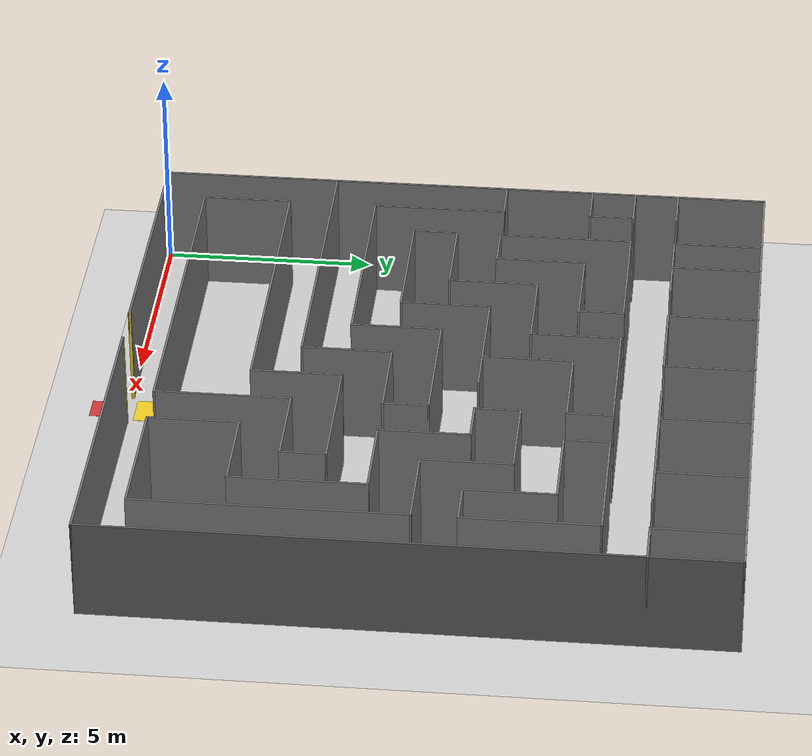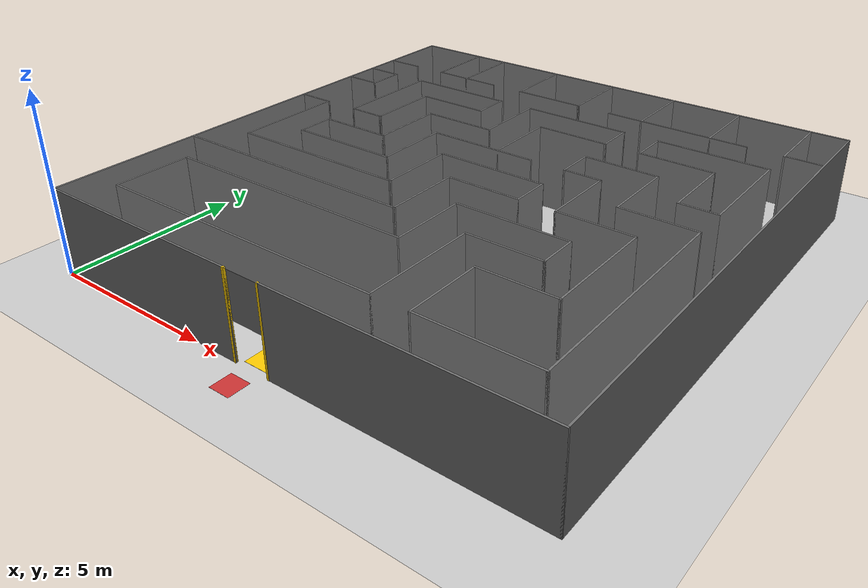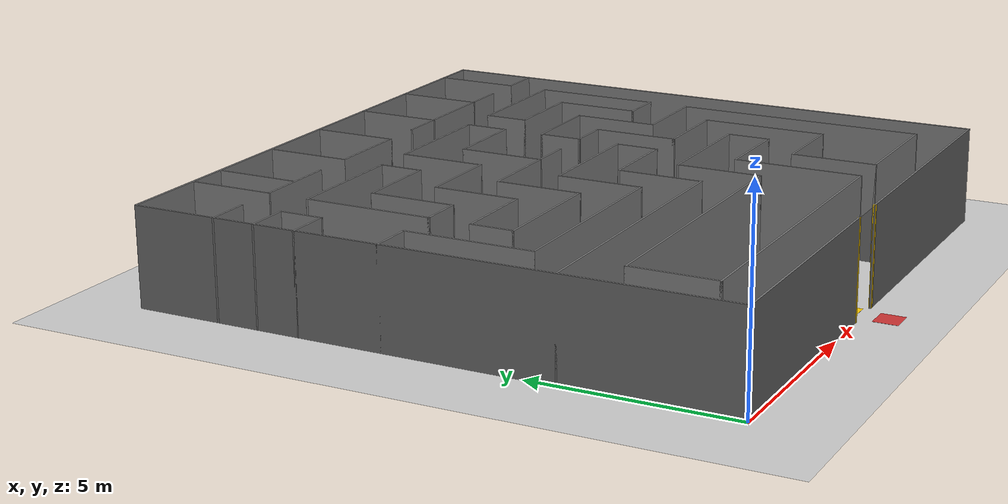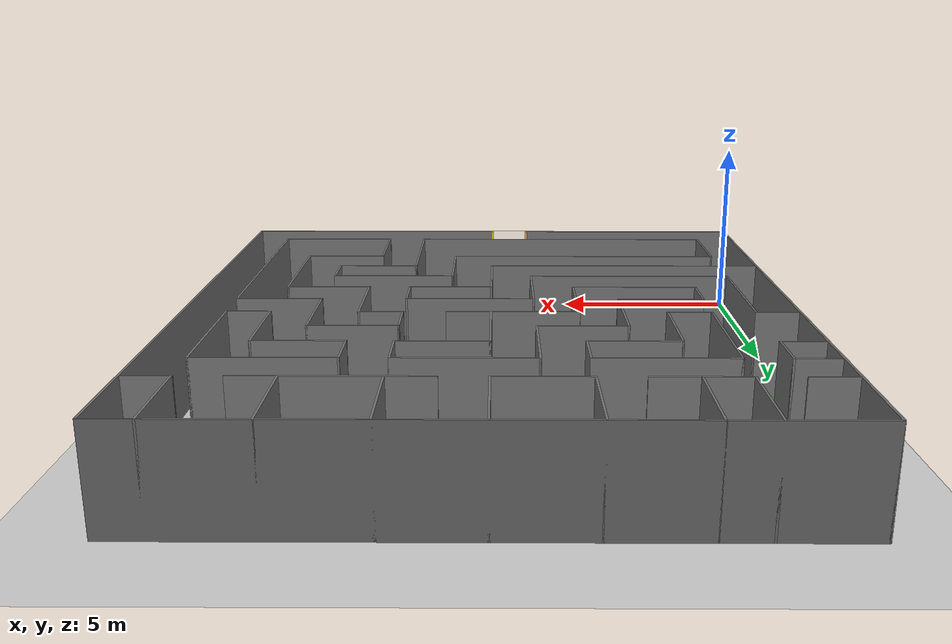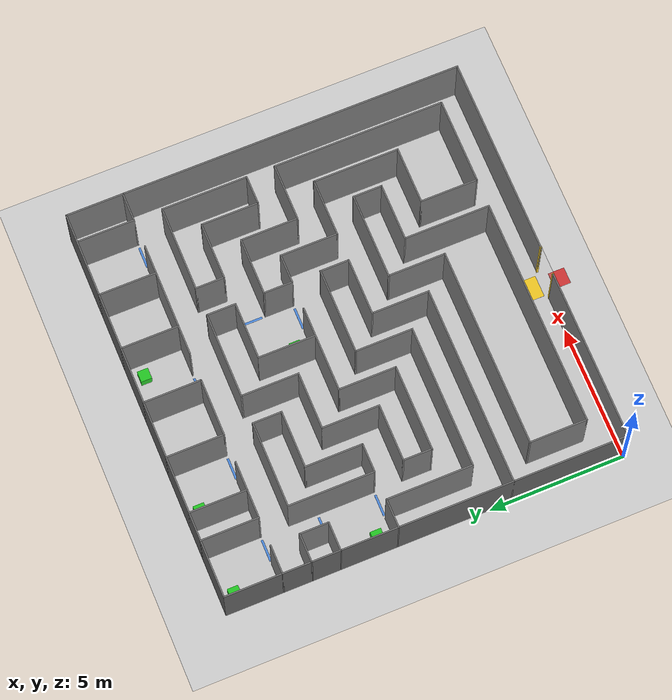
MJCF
<?xml version='1.0' encoding='utf-8'?>
<mujoco model="nidar_airmouse_arena">
  <worldbody>
    <light pos="7.375 7.375 10" dir="0 0 -1" castshadow="false" />
    <geom name="floor" type="plane" size="9.375 9.375 0.1" rgba="0.8 0.8 0.8 1" pos="7.3750 7.3750 0" />
    <geom type="box" pos="3.1750 0.0250 1.2192" size="3.1750 0.0250 1.2192" rgba="0.4 0.4 0.4 1" name="wall_0" />
    <geom type="box" pos="11.0500 0.0250 1.2192" size="3.7000 0.0250 1.2192" rgba="0.4 0.4 0.4 1" name="wall_1" />
    <geom type="box" pos="0.0250 7.3750 1.2192" size="0.0250 7.3750 1.2192" rgba="0.4 0.4 0.4 1" name="wall_2" />
    <geom type="box" pos="5.2750 1.0750 1.2192" size="4.2250 0.0250 1.2192" rgba="0.4 0.4 0.4 1" name="wall_3" />
    <geom type="box" pos="12.1000 1.0750 1.2192" size="1.6000 0.0250 1.2192" rgba="0.4 0.4 0.4 1" name="wall_4" />
    <geom type="box" pos="1.0750 2.1250 1.2192" size="0.0250 1.0750 1.2192" rgba="0.4 0.4 0.4 1" name="wall_5" />
    <geom type="box" pos="1.0750 6.8500 1.2192" size="0.0250 1.6000 1.2192" rgba="0.4 0.4 0.4 1" name="wall_6" />
    <geom type="box" pos="1.0750 11.0500 1.2192" size="0.0250 0.5500 1.2192" rgba="0.4 0.4 0.4 1" name="wall_7" />
    <geom type="box" pos="2.1250 6.8500 1.2192" size="0.0250 0.5500 1.2192" rgba="0.4 0.4 0.4 1" name="wall_8" />
    <geom type="box" pos="2.1250 10.0000 1.2192" size="0.0250 1.6000 1.2192" rgba="0.4 0.4 0.4 1" name="wall_9" />
    <geom type="box" pos="2.1250 13.6750 1.2192" size="0.0250 1.0750 1.2192" rgba="0.4 0.4 0.4 1" name="wall_10" />
    <geom type="box" pos="4.7500 3.1750 1.2192" size="3.7000 0.0250 1.2192" rgba="0.4 0.4 0.4 1" name="wall_11" />
    <geom type="box" pos="11.5750 3.1750 1.2192" size="1.0750 0.0250 1.2192" rgba="0.4 0.4 0.4 1" name="wall_12" />
    <geom type="box" pos="3.1750 9.4750 1.2192" size="0.0250 1.0750 1.2192" rgba="0.4 0.4 0.4 1" name="wall_13" />
    <geom type="box" pos="3.1750 13.6750 1.2192" size="0.0250 1.0750 1.2192" rgba="0.4 0.4 0.4 1" name="wall_14" />
    <geom type="box" pos="3.7000 4.2250 1.2192" size="3.7000 0.0250 1.2192" rgba="0.4 0.4 0.4 1" name="wall_15" />
    <geom type="box" pos="10.5250 4.2250 1.2192" size="1.0750 0.0250 1.2192" rgba="0.4 0.4 0.4 1" name="wall_16" />
    <geom type="box" pos="4.2250 8.4250 1.2192" size="0.0250 1.0750 1.2192" rgba="0.4 0.4 0.4 1" name="wall_17" />
    <geom type="box" pos="3.7000 5.2750 1.2192" size="2.6500 0.0250 1.2192" rgba="0.4 0.4 0.4 1" name="wall_18" />
    <geom type="box" pos="10.0000 5.2750 1.2192" size="1.6000 0.0250 1.2192" rgba="0.4 0.4 0.4 1" name="wall_19" />
    <geom type="box" pos="5.2750 7.3750 1.2192" size="0.0250 1.0750 1.2192" rgba="0.4 0.4 0.4 1" name="wall_20" />
    <geom type="box" pos="5.2750 11.0500 1.2192" size="0.0250 0.5500 1.2192" rgba="0.4 0.4 0.4 1" name="wall_21" />
    <geom type="box" pos="5.2750 13.6750 1.2192" size="0.0250 1.0750 1.2192" rgba="0.4 0.4 0.4 1" name="wall_22" />
    <geom type="box" pos="3.7000 6.3250 1.2192" size="1.6000 0.0250 1.2192" rgba="0.4 0.4 0.4 1" name="wall_23" />
    <geom type="box" pos="8.4250 6.3250 1.2192" size="1.0750 0.0250 1.2192" rgba="0.4 0.4 0.4 1" name="wall_24" />
    <geom type="box" pos="11.5750 6.3250 1.2192" size="1.0750 0.0250 1.2192" rgba="0.4 0.4 0.4 1" name="wall_25" />
    <geom type="box" pos="6.3250 6.3250 1.2192" size="0.0250 1.0750 1.2192" rgba="0.4 0.4 0.4 1" name="wall_26" />
    <geom type="box" pos="6.3250 10.5250 1.2192" size="0.0250 1.0750 1.2192" rgba="0.4 0.4 0.4 1" name="wall_27" />
    <geom type="box" pos="3.1750 7.3750 1.2192" size="1.0750 0.0250 1.2192" rgba="0.4 0.4 0.4 1" name="wall_28" />
    <geom type="box" pos="7.9000 7.3750 1.2192" size="1.6000 0.0250 1.2192" rgba="0.4 0.4 0.4 1" name="wall_29" />
    <geom type="box" pos="12.6250 7.3750 1.2192" size="1.0750 0.0250 1.2192" rgba="0.4 0.4 0.4 1" name="wall_30" />
    <geom type="box" pos="7.3750 5.2750 1.2192" size="0.0250 1.0750 1.2192" rgba="0.4 0.4 0.4 1" name="wall_31" />
    <geom type="box" pos="7.3750 9.4750 1.2192" size="0.0250 1.0750 1.2192" rgba="0.4 0.4 0.4 1" name="wall_32" />
    <geom type="box" pos="7.3750 13.6750 1.2192" size="0.0250 1.0750 1.2192" rgba="0.4 0.4 0.4 1" name="wall_33" />
    <geom type="box" pos="0.5500 8.4250 1.2192" size="0.5500 0.0250 1.2192" rgba="0.4 0.4 0.4 1" name="wall_34" />
    <geom type="box" pos="2.6500 8.4250 1.2192" size="0.5500 0.0250 1.2192" rgba="0.4 0.4 0.4 1" name="wall_35" />
    <geom type="box" pos="6.8500 8.4250 1.2192" size="1.6000 0.0250 1.2192" rgba="0.4 0.4 0.4 1" name="wall_36" />
    <geom type="box" pos="10.0000 8.4250 1.2192" size="0.5500 0.0250 1.2192" rgba="0.4 0.4 0.4 1" name="wall_37" />
    <geom type="box" pos="13.1500 8.4250 1.2192" size="0.5500 0.0250 1.2192" rgba="0.4 0.4 0.4 1" name="wall_38" />
    <geom type="box" pos="8.4250 4.2250 1.2192" size="0.0250 1.0750 1.2192" rgba="0.4 0.4 0.4 1" name="wall_39" />
    <geom type="box" pos="5.2750 9.4750 1.2192" size="1.0750 0.0250 1.2192" rgba="0.4 0.4 0.4 1" name="wall_40" />
    <geom type="box" pos="10.5250 9.4750 1.2192" size="1.0750 0.0250 1.2192" rgba="0.4 0.4 0.4 1" name="wall_41" />
    <geom type="box" pos="9.4750 2.6500 1.2192" size="0.0250 1.6000 1.2192" rgba="0.4 0.4 0.4 1" name="wall_42" />
    <geom type="box" pos="9.4750 6.8500 1.2192" size="0.0250 0.5500 1.2192" rgba="0.4 0.4 0.4 1" name="wall_43" />
    <geom type="box" pos="9.4750 8.9500 1.2192" size="0.0250 0.5500 1.2192" rgba="0.4 0.4 0.4 1" name="wall_44" />
    <geom type="box" pos="9.4750 11.0500 1.2192" size="0.0250 0.5500 1.2192" rgba="0.4 0.4 0.4 1" name="wall_45" />
    <geom type="box" pos="9.4750 13.6750 1.2192" size="0.0250 1.0750 1.2192" rgba="0.4 0.4 0.4 1" name="wall_46" />
    <geom type="box" pos="0.5500 10.5250 1.2192" size="0.5500 0.0250 1.2192" rgba="0.4 0.4 0.4 1" name="wall_47" />
    <geom type="box" pos="4.2250 10.5250 1.2192" size="1.0750 0.0250 1.2192" rgba="0.4 0.4 0.4 1" name="wall_48" />
    <geom type="box" pos="8.4250 10.5250 1.2192" size="1.0750 0.0250 1.2192" rgba="0.4 0.4 0.4 1" name="wall_49" />
    <geom type="box" pos="11.5750 10.5250 1.2192" size="1.0750 0.0250 1.2192" rgba="0.4 0.4 0.4 1" name="wall_50" />
    <geom type="box" pos="10.5250 2.1250 1.2192" size="0.0250 1.0750 1.2192" rgba="0.4 0.4 0.4 1" name="wall_51" />
    <geom type="box" pos="10.5250 7.3750 1.2192" size="0.0250 1.0750 1.2192" rgba="0.4 0.4 0.4 1" name="wall_52" />
    <geom type="box" pos="10.5250 11.0500 1.2192" size="0.0250 0.5500 1.2192" rgba="0.4 0.4 0.4 1" name="wall_53" />
    <geom type="box" pos="0.5500 11.5750 1.2192" size="0.5500 0.0250 1.2192" rgba="0.4 0.4 0.4 1" name="wall_54" />
    <geom type="box" pos="3.7000 11.5750 1.2192" size="1.6000 0.0250 1.2192" rgba="0.4 0.4 0.4 1" name="wall_55" />
    <geom type="box" pos="7.9000 11.5750 1.2192" size="1.6000 0.0250 1.2192" rgba="0.4 0.4 0.4 1" name="wall_56" />
    <geom type="box" pos="12.1000 11.5750 1.2192" size="1.6000 0.0250 1.2192" rgba="0.4 0.4 0.4 1" name="wall_57" />
    <geom type="box" pos="11.5750 4.7500 1.2192" size="0.0250 0.5500 1.2192" rgba="0.4 0.4 0.4 1" name="wall_58" />
    <geom type="box" pos="11.5750 8.4250 1.2192" size="0.0250 1.0750 1.2192" rgba="0.4 0.4 0.4 1" name="wall_59" />
    <geom type="box" pos="11.5750 13.6750 1.2192" size="0.0250 1.0750 1.2192" rgba="0.4 0.4 0.4 1" name="wall_60" />
    <geom type="box" pos="0.5500 12.6250 1.2192" size="0.5500 0.0250 1.2192" rgba="0.4 0.4 0.4 1" name="wall_61" />
    <geom type="box" pos="3.1750 12.6250 1.2192" size="1.0750 0.0250 1.2192" rgba="0.4 0.4 0.4 1" name="wall_62" />
    <geom type="box" pos="6.3250 12.6250 1.2192" size="1.0750 0.0250 1.2192" rgba="0.4 0.4 0.4 1" name="wall_63" />
    <geom type="box" pos="10.5250 12.6250 1.2192" size="2.1250 0.0250 1.2192" rgba="0.4 0.4 0.4 1" name="wall_64" />
    <geom type="box" pos="14.2000 12.6250 1.2192" size="0.5500 0.0250 1.2192" rgba="0.4 0.4 0.4 1" name="wall_65" />
    <geom type="box" pos="12.6250 4.7500 1.2192" size="0.0250 1.6000 1.2192" rgba="0.4 0.4 0.4 1" name="wall_66" />
    <geom type="box" pos="12.6250 9.4750 1.2192" size="0.0250 1.0750 1.2192" rgba="0.4 0.4 0.4 1" name="wall_67" />
    <geom type="box" pos="13.6750 4.2250 1.2192" size="0.0250 3.1750 1.2192" rgba="0.4 0.4 0.4 1" name="wall_68" />
    <geom type="box" pos="13.6750 10.0000 1.2192" size="0.0250 1.6000 1.2192" rgba="0.4 0.4 0.4 1" name="wall_69" />
    <geom type="box" pos="13.6750 13.6750 1.2192" size="0.0250 1.0750 1.2192" rgba="0.4 0.4 0.4 1" name="wall_70" />
    <geom type="box" pos="7.3750 14.7250 1.2192" size="7.3750 0.0250 1.2192" rgba="0.4 0.4 0.4 1" name="wall_71" />
    <geom type="box" pos="14.7250 7.3750 1.2192" size="0.0250 7.3750 1.2192" rgba="0.4 0.4 0.4 1" name="wall_72" />
    <geom type="box" pos="7.3750 7.3750 2.4434" size="7.3750 7.3750 0.0050" rgba="0.7 0.7 0.7 0.12" name="ceiling_net" />
    <geom type="box" pos="6.8500 0.5500 0.0020" size="0.4000 0.4000 0.0020" rgba="1 0.8 0 1" name="gate_entry_exit_tile" contype="0" conaffinity="0" />
    <geom type="box" pos="6.3200 0.0250 1.2192" size="0.0300 0.0350 1.2192" rgba="1 0.8 0 1" name="gate_entry_exit_post_n" contype="0" conaffinity="0" />
    <geom type="box" pos="7.3800 0.0250 1.2192" size="0.0300 0.0350 1.2192" rgba="1 0.8 0 1" name="gate_entry_exit_post_p" contype="0" conaffinity="0" />
    <geom type="box" pos="6.8500 -0.6048 0.0020" size="0.3048 0.3048 0.0020" rgba="0.8 0.2 0.2 1" name="launch_pad" contype="0" conaffinity="0" />
    <geom type="box" pos="1.6000 12.6250 0.0020" size="0.4000 0.0400 0.0020" rgba="0.2 0.5 0.9 1" name="door_marker_0" contype="0" conaffinity="0" />
    <geom type="box" pos="4.7500 12.6250 0.0020" size="0.4000 0.0400 0.0020" rgba="0.2 0.5 0.9 1" name="door_marker_1" contype="0" conaffinity="0" />
    <geom type="box" pos="7.9000 12.6250 0.0020" size="0.4000 0.0400 0.0020" rgba="0.2 0.5 0.9 1" name="door_marker_2" contype="0" conaffinity="0" />
    <geom type="box" pos="13.1500 12.6250 0.0020" size="0.4000 0.0400 0.0020" rgba="0.2 0.5 0.9 1" name="door_marker_3" contype="0" conaffinity="0" />
    <geom type="box" pos="1.6000 10.5250 0.0020" size="0.4000 0.0400 0.0020" rgba="0.2 0.5 0.9 1" name="door_marker_4" contype="0" conaffinity="0" />
    <geom type="box" pos="1.6000 8.4250 0.0020" size="0.4000 0.0400 0.0020" rgba="0.2 0.5 0.9 1" name="door_marker_5" contype="0" conaffinity="0" />
    <geom type="box" pos="9.4750 10.0000 0.0020" size="0.0400 0.4000 0.0020" rgba="0.2 0.5 0.9 1" name="door_marker_6" contype="0" conaffinity="0" />
    <geom type="box" pos="8.9500 8.4250 0.0020" size="0.4000 0.0400 0.0020" rgba="0.2 0.5 0.9 1" name="door_marker_7" contype="0" conaffinity="0" />
    <geom type="box" pos="0.5500 14.2000 0.2000" size="0.2000 0.2000 0.2000" rgba="0 0.8 0 1" name="survivor_1" />
    <geom type="box" pos="3.7000 14.2000 0.2000" size="0.2000 0.2000 0.2000" rgba="0 0.8 0 1" name="survivor_2" />
    <geom type="box" pos="8.9500 14.2000 0.2000" size="0.2000 0.2000 0.2000" rgba="0 0.8 0 1" name="survivor_3" />
    <geom type="box" pos="12.1000 14.2000 0.2000" size="0.2000 0.2000 0.2000" rgba="0 0.8 0 1" name="survivor_4" />
    <geom type="box" pos="0.5500 8.9500 0.2000" size="0.2000 0.2000 0.2000" rgba="0 0.8 0 1" name="survivor_5" />
    <geom type="box" pos="7.9000 8.9500 0.2000" size="0.2000 0.2000 0.2000" rgba="0 0.8 0 1" name="survivor_6" />
  </worldbody>
</mujoco>
